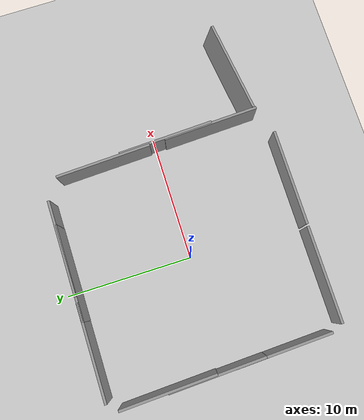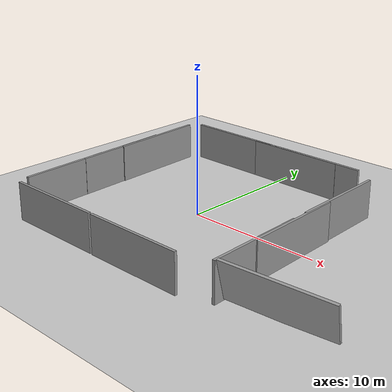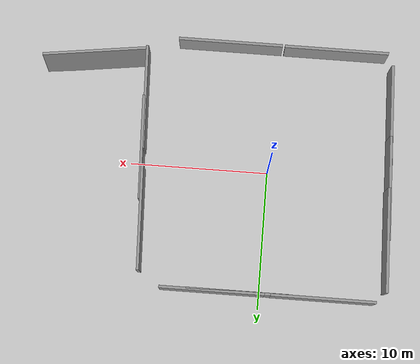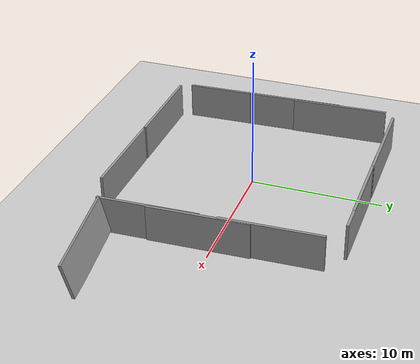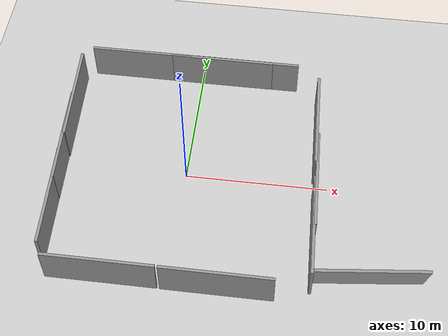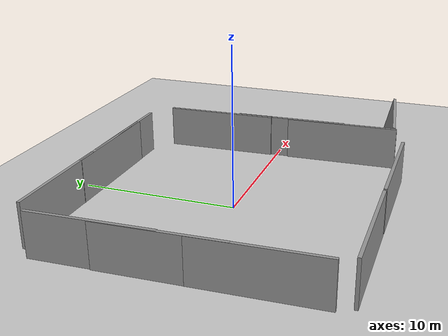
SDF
<sdf version="1.7">
 <world name="default">
  <light name="sun" type="directional">
   <pose>0 0 10 0 -0 0</pose>
   <diffuse>0.8 0.8 0.8 1</diffuse>
   <specular>0.2 0.2 0.2 1</specular>
   <attenuation>
    <range>1000</range>
    <constant>0.9</constant>
    <linear>0.01</linear>
    <quadratic>0.001</quadratic>
   </attenuation>
   <direction>-0.5 0.1 -0.9</direction>
   <spot><inner_angle>0</inner_angle><outer_angle>0</outer_angle><falloff>0</falloff></spot>
  </light>
  <model name="ground_plane">
   <static>1</static>
   <link name="link">
    <collision name="collision">
     <geometry><plane><normal>0 0 1</normal><size>100 100</size></plane></geometry>
     <surface>
      <contact><collide_bitmask>65535</collide_bitmask></contact>
      <friction><ode><mu>100</mu><mu2>50</mu2></ode></friction>
     </surface>
    </collision>
    <visual name="visual">
     <cast_shadows>0</cast_shadows>
     <geometry><plane><normal>0 0 1</normal><size>100 100</size></plane></geometry>
     <material>
      <script><uri>file://media/materials/scripts/gazebo.material</uri><name>Gazebo/Grey</name></script>
     </material>
    </visual>
   </link>
  </model>
  <gravity>0 0 -9.8</gravity>
  <magnetic_field>6e-06 2.3e-05 -4.2e-05</magnetic_field>
  <atmosphere type="adiabatic"/>
  <physics type="ode">
   <max_step_size>0.001</max_step_size>
   <real_time_factor>1</real_time_factor>
   <real_time_update_rate>1000</real_time_update_rate>
  </physics>
  <scene><ambient>0.4 0.4 0.4 1</ambient><background>0.7 0.7 0.7 1</background><shadows>1</shadows></scene>
  <audio><device>default</device></audio>
  <spherical_coordinates>
   <surface_model>EARTH_WGS84</surface_model>
   <latitude_deg>0</latitude_deg>
   <longitude_deg>0</longitude_deg>
   <elevation>0</elevation>
   <heading_deg>0</heading_deg>
  </spherical_coordinates>
  <model name="grey_wall">
   <static>1</static>
   <link name="link">
    <pose>0 0 1.4 0 -0 0</pose>
    <collision name="collision"><geometry><box><size>7.5 0.2 2.8</size></box></geometry></collision>
    <visual name="visual">
     <cast_shadows>0</cast_shadows>
     <geometry><box><size>7.5 0.2 2.8</size></box></geometry>
     <material>
      <script>
       <uri>model://grey_wall/materials/scripts</uri>
       <uri>model://grey_wall/materials/textures</uri>
       <name>vrc/grey_wall</name>
      </script>
     </material>
    </visual>
   </link>
   <pose>-4.32552 -8.99387 0 0 -0 0</pose>
  </model>
  <model name="grey_wall_clone">
   <static>1</static>
   <link name="link">
    <pose>0 0 1.4 0 -0 0</pose>
    <collision name="collision"><geometry><box><size>7.5 0.2 2.8</size></box></geometry></collision>
    <visual name="visual">
     <cast_shadows>0</cast_shadows>
     <geometry><box><size>7.5 0.2 2.8</size></box></geometry>
     <material>
      <script>
       <uri>model://grey_wall/materials/scripts</uri>
       <uri>model://grey_wall/materials/textures</uri>
       <name>vrc/grey_wall</name>
      </script>
     </material>
    </visual>
   </link>
   <pose>3.35011 -9.00575 0 0 -0 0</pose>
  </model>
  <model name="grey_wall_clone_0">
   <static>1</static>
   <link name="link">
    <pose>0 0 1.4 0 -0 0</pose>
    <collision name="collision"><geometry><box><size>7.5 0.2 2.8</size></box></geometry></collision>
    <visual name="visual">
     <cast_shadows>0</cast_shadows>
     <geometry><box><size>7.5 0.2 2.8</size></box></geometry>
     <material>
      <script>
       <uri>model://grey_wall/materials/scripts</uri>
       <uri>model://grey_wall/materials/textures</uri>
       <name>vrc/grey_wall</name>
      </script>
     </material>
    </visual>
   </link>
   <pose>12.976 -6.98629 0 0.244608 0.035721 0.124669</pose>
  </model>
  <model name="grey_wall_clone_1">
   <static>1</static>
   <link name="link">
    <pose>0 0 1.4 0 -0 0</pose>
    <collision name="collision"><geometry><box><size>7.5 0.2 2.8</size></box></geometry></collision>
    <visual name="visual">
     <cast_shadows>0</cast_shadows>
     <geometry><box><size>7.5 0.2 2.8</size></box></geometry>
     <material>
      <script>
       <uri>model://grey_wall/materials/scripts</uri>
       <uri>model://grey_wall/materials/textures</uri>
       <name>vrc/grey_wall</name>
      </script>
     </material>
    </visual>
   </link>
   <pose>9.16721 -0.908925 0 -0.000287 1e-05 1.60695</pose>
  </model>
  <model name="grey_wall_clone_1_clone">
   <static>1</static>
   <link name="link">
    <pose>0 0 1.4 0 -0 0</pose>
    <collision name="collision"><geometry><box><size>7.5 0.2 2.8</size></box></geometry></collision>
    <visual name="visual">
     <cast_shadows>0</cast_shadows>
     <geometry><box><size>7.5 0.2 2.8</size></box></geometry>
     <material>
      <script>
       <uri>model://grey_wall/materials/scripts</uri>
       <uri>model://grey_wall/materials/textures</uri>
       <name>vrc/grey_wall</name>
      </script>
     </material>
    </visual>
   </link>
   <pose>8.87712 4.16733 0 -0.000287 1e-05 1.60695</pose>
  </model>
  <model name="grey_wall_clone_1_clone_0">
   <static>1</static>
   <link name="link">
    <pose>0 0 1.4 0 -0 0</pose>
    <collision name="collision"><geometry><box><size>7.5 0.2 2.8</size></box></geometry></collision>
    <visual name="visual">
     <cast_shadows>0</cast_shadows>
     <geometry><box><size>7.5 0.2 2.8</size></box></geometry>
     <material>
      <script>
       <uri>model://grey_wall/materials/scripts</uri>
       <uri>model://grey_wall/materials/textures</uri>
       <name>vrc/grey_wall</name>
      </script>
     </material>
    </visual>
   </link>
   <pose>9.21142 -4.55353 0 -0.000287 1e-05 1.60695</pose>
  </model>
  <model name="grey_wall_clone_clone">
   <static>1</static>
   <link name="link">
    <pose>0 0 1.4 0 -0 0</pose>
    <collision name="collision"><geometry><box><size>7.5 0.2 2.8</size></box></geometry></collision>
    <visual name="visual">
     <cast_shadows>0</cast_shadows>
     <geometry><box><size>7.5 0.2 2.8</size></box></geometry>
     <material>
      <script>
       <uri>model://grey_wall/materials/scripts</uri>
       <uri>model://grey_wall/materials/textures</uri>
       <name>vrc/grey_wall</name>
      </script>
     </material>
    </visual>
   </link>
   <pose>3.40327 8.95519 0 0 -0 0</pose>
  </model>
  <model name="grey_wall_clone_clone_0">
   <static>1</static>
   <link name="link">
    <pose>0 0 1.4 0 -0 0</pose>
    <collision name="collision"><geometry><box><size>7.5 0.2 2.8</size></box></geometry></collision>
    <visual name="visual">
     <cast_shadows>0</cast_shadows>
     <geometry><box><size>7.5 0.2 2.8</size></box></geometry>
     <material>
      <script>
       <uri>model://grey_wall/materials/scripts</uri>
       <uri>model://grey_wall/materials/textures</uri>
       <name>vrc/grey_wall</name>
      </script>
     </material>
    </visual>
   </link>
   <pose>1.49291 8.93829 0 0 -0 0</pose>
  </model>
  <model name="grey_wall_clone_clone_1">
   <static>1</static>
   <link name="link">
    <pose>0 0 1.4 0 -0 0</pose>
    <collision name="collision"><geometry><box><size>7.5 0.2 2.8</size></box></geometry></collision>
    <visual name="visual">
     <cast_shadows>0</cast_shadows>
     <geometry><box><size>7.5 0.2 2.8</size></box></geometry>
     <material>
      <script>
       <uri>model://grey_wall/materials/scripts</uri>
       <uri>model://grey_wall/materials/textures</uri>
       <name>vrc/grey_wall</name>
      </script>
     </material>
    </visual>
   </link>
   <pose>-4.52322 8.95441 0 0 -0 0</pose>
  </model>
  <model name="grey_wall_clone_1_clone_0_clone">
   <static>1</static>
   <link name="link">
    <pose>0 0 1.4 0 -0 0</pose>
    <collision name="collision"><geometry><box><size>7.5 0.2 2.8</size></box></geometry></collision>
    <visual name="visual">
     <cast_shadows>0</cast_shadows>
     <geometry><box><size>7.5 0.2 2.8</size></box></geometry>
     <material>
      <script>
       <uri>model://grey_wall/materials/scripts</uri>
       <uri>model://grey_wall/materials/textures</uri>
       <name>vrc/grey_wall</name>
      </script>
     </material>
    </visual>
   </link>
   <pose>-8.82602 4.49165 0 -0.000287 1e-05 1.60695</pose>
  </model>
  <model name="grey_wall_clone_1_clone_0_clone_0">
   <static>1</static>
   <link name="link">
    <pose>0 0 1.4 0 -0 0</pose>
    <collision name="collision"><geometry><box><size>7.5 0.2 2.8</size></box></geometry></collision>
    <visual name="visual">
     <cast_shadows>0</cast_shadows>
     <geometry><box><size>7.5 0.2 2.8</size></box></geometry>
     <material>
      <script>
       <uri>model://grey_wall/materials/scripts</uri>
       <uri>model://grey_wall/materials/textures</uri>
       <name>vrc/grey_wall</name>
      </script>
     </material>
    </visual>
   </link>
   <pose>-8.74941 0.744052 0 -0.000287 1e-05 1.60695</pose>
  </model>
  <model name="grey_wall_clone_1_clone_0_clone_1">
   <static>1</static>
   <link name="link">
    <pose>0 0 1.4 0 -0 0</pose>
    <collision name="collision"><geometry><box><size>7.5 0.2 2.8</size></box></geometry></collision>
    <visual name="visual">
     <cast_shadows>0</cast_shadows>
     <geometry><box><size>7.5 0.2 2.8</size></box></geometry>
     <material>
      <script>
       <uri>model://grey_wall/materials/scripts</uri>
       <uri>model://grey_wall/materials/textures</uri>
       <name>vrc/grey_wall</name>
      </script>
     </material>
    </visual>
   </link>
   <pose>-8.57553 -4.38168 0 -0.000287 1e-05 1.60695</pose>
  </model>
 </world>
</sdf>
